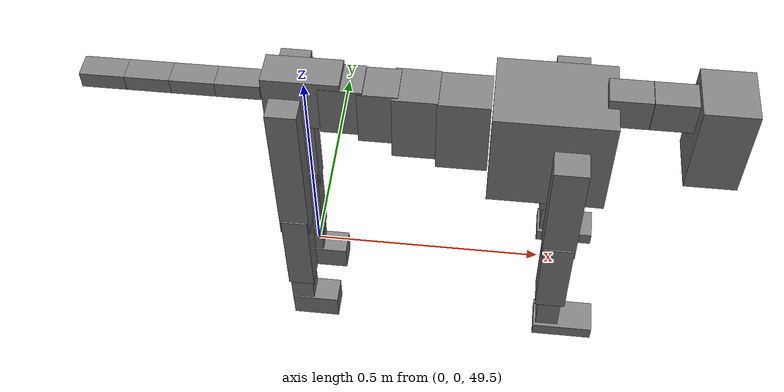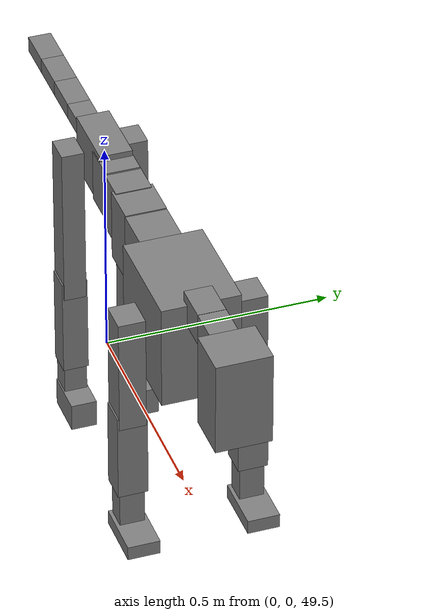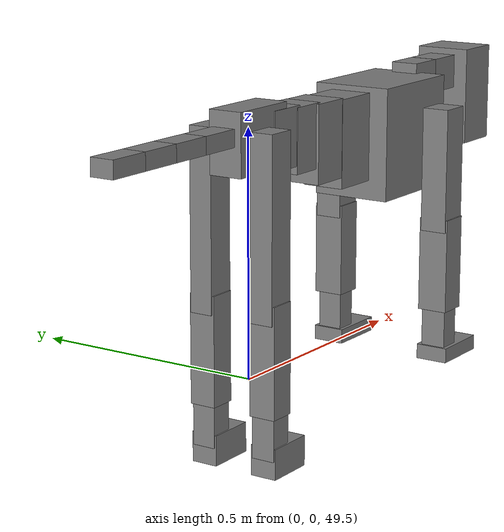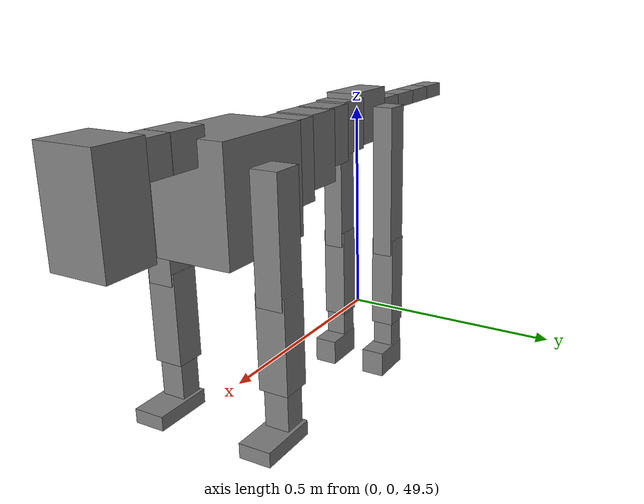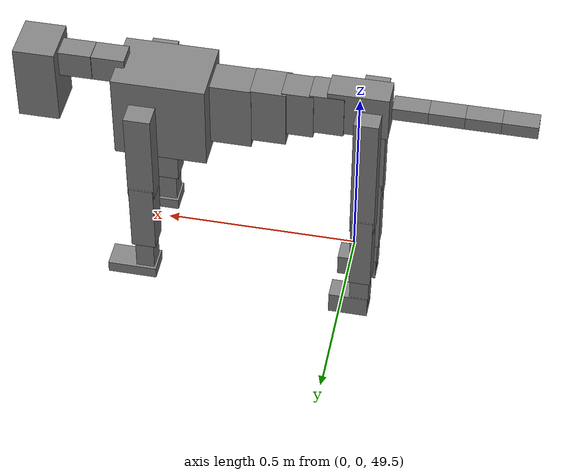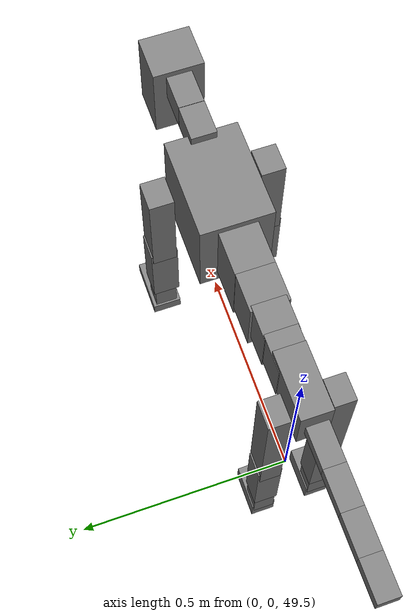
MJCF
<mujoco model="dog">

    <default>
        <joint armature="0.02" stiffness="1" damping="0.2" limited="true"/>
        <geom condim="3" friction="1 0.05 0.05" margin="0.01"/>
        <motor ctrllimited="true" ctrlrange="-1.0 1.0" forcelimited="true" gear="50"/>
    </default>

    <compiler inertiafromgeom="true" angle="radian"/>

    <option timestep="0.016" iterations="50" tolerance="1e-10" solver="Newton" jacobian="dense" cone="pyramidal"/>

    <size nconmax="20000" njmax="60000" nstack="5000000"/>
    <visual>
        <map force="0.1" zfar="30"/>
        <rgba haze="0.15 0.25 0.35 1"/>
        <quality shadowsize="2048"/>
        <global offwidth="800" offheight="800"/>
    </visual>

    <asset>
        <texture type="skybox" builtin="gradient" rgb1="0.3 0.5 0.7" rgb2="0 0 0" width="512" height="512"/>
        <texture name="texplane" type="2d" builtin="checker" rgb1=".2 .3 .4" rgb2=".1 0.15 0.2" width="512" height="512"
                 mark="cross" markrgb=".8 .8 .8"/>
        <texture name="texgeom" type="cube" builtin="flat" mark="cross" width="127" height="1278" rgb1="0.8 0.6 0.4"
                 rgb2="0.8 0.6 0.4" markrgb="1 1 1" random="0.01"/>

        <material name="matplane" reflectance="0.3" texture="texplane" texrepeat="1 1" texuniform="true"/>
        <material name="matgeom" texture="texgeom" texuniform="true" rgba="0.8 0.6 .4 1"/>
    </asset>

    <worldbody>
        <geom name="floor" pos="0 0 0" size="0 0 .25" type="plane" material="matplane" condim="3"/>

        <light directional="false" diffuse=".2 .2 .2" specular="0 0 0" pos="0 0 5" dir="0 0 -1" castshadow="false"/>
        <light mode="targetbodycom" target="torso" directional="false" diffuse=".8 .8 .8" specular="0.3 0.3 0.3"
               pos="0 0 4.0" dir="0 0 -1"/>

        <body name="root" pos="0 0 50">
            <freejoint name="root_1"/>
            <geom type="box" pos="0 0 -0.02" size="0.0774  0.0358  0.063" density="2030"/>

            <body name="spine1" pos="0.054 0 0">
                <joint name="spine1_y" axis="0 1 0" range="0 0.7" limited="true"/>
                <geom type="box" pos="0.02375 0 -0.03" size="0.04375  0.0375  0.05985" density="2030"/>

                <body name="spine2" pos="0.0612 0 0">
                    <joint name="spine2_y" axis="0 1 0" range="-0.15 0.15" limited="true"/>
                    <geom type="box" pos="0.03555  0  -0.04" size="0.04055  0.039  0.06615" density="2030"/>

                    <body name="spine3" pos="0.0730 0 0">
                        <joint name="spine3_y" axis="0 1 0" range="-0.15 0.15" limited="true"/>
                        <geom type="box" pos="0.03555  0  -0.057" size="0.04555  0.0445  0.081" density="2030"/>

                        <body name="spine4" pos="0.0780 0 0">
                            <joint name="spine4_y" axis="0 1 0" range="-0.15 0.15" limited="true"/>
                            <geom type="box" pos="0.05265  0  -0.07" size="0.05265  0.045  0.09135" density="2030"/>

                            <body name="torso" pos="0.1082 0 0">
                                <joint name="torso_y" axis="0 1 0" range="-0.15 0.15" limited="true"/>
                                <geom type="box" pos="0.11925  0  -0.085" size="0.11925  0.085  0.11745"
                                      density="2030"/>

                                <body name="neck1" pos="0.2160  0   0.0180">
                                    <joint name="neck1_y" axis="0 1 0" range="-1.2  -1" limited="true"/>
                                    <geom type="box" pos="0.0423  0  0" size="0.0423  0.03  0.036" density="2325"/>

                                    <body name="neck2" pos="0.0853  0  0">
                                        <joint name="neck2_y" axis="0 1 0" range="0.1  0" limited="true"/>
                                        <geom type="box" pos="0.0423  0  0" size="0.0423  0.03  0.036" density="2325"/>

                                        <body name="head" pos="0.0853  0  0">
                                            <joint name="head_y" axis="0 1 0" range="-0.3  -0.2" limited="true"/>
                                            <geom type="box" pos="0.0531  0  -0.055" size="0.0531  0.06  0.1044"
                                                  density="4030"/>

                                        </body>
                                    </body>
                                </body>

                                <body name="front_shoulder" pos="0.156  0   -0.0480">
                                    <joint name="front_shoulder_y" axis="0 1 0" range="-1 1.5" limited="true"/>
                                    <geom type="box" pos="0 0.13 -0.1043" size="0.0339  0.0289  0.1309" density="1158"/>
                                    <geom type="box" pos="0 -0.13 -0.1043" size="0.0339  0.0289  0.1309"
                                          density="1158"/>

                                    <body name="front_elbow" pos="0  0  -0.2086">
                                        <joint name="front_elbow_y" axis="0 1 0" range="-2 0" limited="true"/>
                                        <geom type="box" pos="0 0.13 -0.0998" size="0.0316  0.0323  0.0998"
                                              density="1081"/>
                                        <geom type="box" pos="0 -0.13 -0.0998" size="0.0316  0.0323  0.0998"
                                              density="1081"/>

                                        <body name="front_wrist" pos="0  0  -0.1996">
                                            <joint name="front_wrist_y" axis="0 1 0" range="-0.2 0" limited="true"/>
                                            <geom type="box" pos="0 0.13 -0.0475" size="0.0241  0.0268  0.0607"
                                                  density="1664"/>
                                            <geom type="box" pos="0 -0.13 -0.0475" size="0.0241  0.0268  0.0607"
                                                  density="1664"/>

                                            <body name="front_finger_end" pos="0  0  -0.0950">
                                                <joint name="front_finger_y" axis="0 1 0" range="-0.4 1"
                                                       limited="true"/>
                                                <geom type="box" pos="0.0350  0.13  -0.0007"
                                                      size="0.0641  0.0350  0.0157" density="1515"/>
                                                <geom type="box" pos="0.0350  -0.13  -0.0007"
                                                      size="0.0641  0.0350  0.0157" density="1515"/>

                                            </body>

                                        </body>
                                    </body>
                                </body>

                            </body>
                        </body>
                    </body>
                </body>
            </body>

            <body name="back_hip" pos="-0.03 0 -0.018">
                <joint name="back_hip_y" axis="0 1 0" range="-1.5 0.3" limited="true"/>
                <geom type="box" pos="0 0.07 -0.1617" size="0.0314  0.0246  0.1845" density="1154"/>
                <geom type="box" pos="0 -0.07 -0.1617" size="0.0314  0.0246  0.1845" density="1154"/>

                <body name="back_knee" pos="0  0  -0.3234">
                    <joint name="back_knee_y" axis="0 1 0" range="0 2.8" limited="true"/>
                    <geom type="box" pos="0 0.07 -0.0972" size="0.0284  0.0280  0.1128" density="1227"/>
                    <geom type="box" pos="0 -0.07 -0.0972" size="0.0284  0.0280  0.1128" density="1227"/>

                    <body name="back_ankle" pos="0  0  -0.1945">
                        <joint name="back_ankle_y" axis="0 1 0" range="-2.2 0" limited="true"/>
                        <geom type="box" pos="0 0.07 -0.0448" size="0.0250  0.0250  0.0561" density="1284"/>
                        <geom type="box" pos="0 -0.07 -0.0448" size="0.0250  0.0250  0.0561" density="1284"/>

                        <body name="back_toe_end" pos="0  0  -0.0896">
                            <joint name="back_toe_y" axis="0 1 0" range="-0.4 1" limited="true"/>
                            <geom type="box" pos="0.0282  0.07  -0.0162" size="0.0517  0.0282  0.0312" density="1515"/>
                            <geom type="box" pos="0.0282  -0.07  -0.0162" size="0.0517  0.0282  0.0312" density="1515"/>

                        </body>
                    </body>
                </body>
            </body>

            <body name="tail1" pos="-0.074 0 -0.006">
                <joint name="tail1_y" axis="0 1 0" range="-0.2 0.2" limited="true"/>
                <geom type="box" pos="-0.0536  0  0" size="0.045  0.025  0.0175" density="1587"/>

                <body name="tail2" pos="-0.09 0 0">
                    <joint name="tail2_y" axis="0 1 0" range="-0.2 0.2" limited="true"/>
                    <geom type="box" pos="-0.0536  0  0" size="0.045  0.025  0.0175" density="1587"/>

                    <body name="tail3" pos="-0.09 0 0">
                        <joint name="tail3_y" axis="0 1 0" range="-0.2 0.2" limited="true"/>
                        <geom type="box" pos="-0.0536  0  0" size="0.045  0.025  0.0175" density="1587"/>

                        <body name="tail4" pos="-0.09 0 0">
                            <joint name="tail4_y" axis="0 1 0" range="-0.2 0.2" limited="true"/>
                            <geom type="box" pos="-0.0536  0  0" size="0.045  0.025  0.0175" density="1587"/>

                        </body>
                    </body>
                </body>
            </body>
        </body>
    </worldbody>

    <actuator>
        <motor joint="spine1_y" forcerange="-150 150     "/>
        <motor joint="spine2_y" forcerange="-150 150     "/>
        <motor joint="spine3_y" forcerange="-150 150     "/>
        <motor joint="spine4_y" forcerange="-150 150     "/>
        <motor joint="torso_y" forcerange="-150 150     "/>
        <motor joint="neck1_y" forcerange="-100 100       "/>
        <motor joint="neck2_y" forcerange="-100 100       "/>
        <motor joint="head_y" forcerange="-150 150       "/>
        <motor joint="front_shoulder_y" forcerange="-179.07 113.83"/>
        <motor joint="front_elbow_y" forcerange="-184.58 150.62"/>
        <motor joint="front_wrist_y" forcerange="-99.68 114.78"/>
        <motor joint="front_finger_y" forcerange="-90.01 56.39"/>
        <motor joint="back_hip_y" forcerange="-319.67 208.84"/>
        <motor joint="back_knee_y" forcerange="-390.41 217.22"/>
        <motor joint="back_angle_y" forcerange="-102.88 197.03"/>
        <motor joint="back_toe_y" forcerange="-44.53 101.02"/>
        <motor joint="tail1_y" forcerange="-50 50     "/>
        <motor joint="tail2_y" forcerange="-50 50     "/>
        <motor joint="tail3_y" forcerange="-50 50     "/>
        <motor joint="tail4_y" forcerange="-50 50     "/>
    </actuator>
</mujoco>
